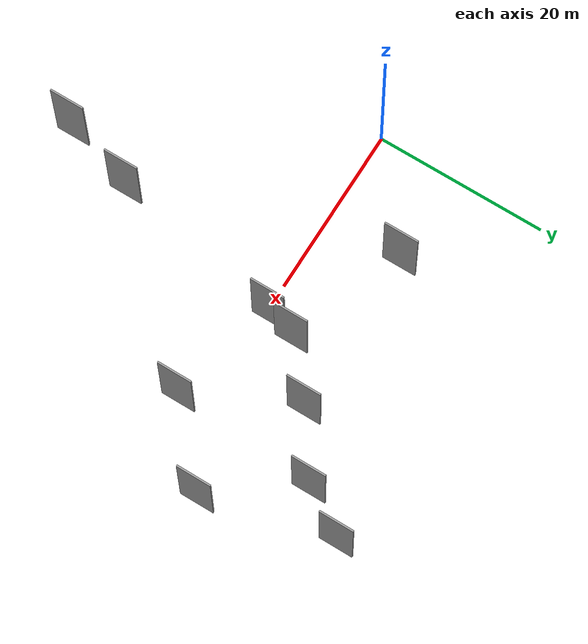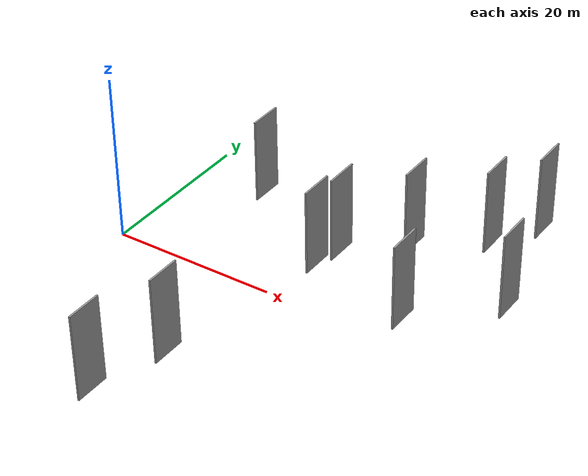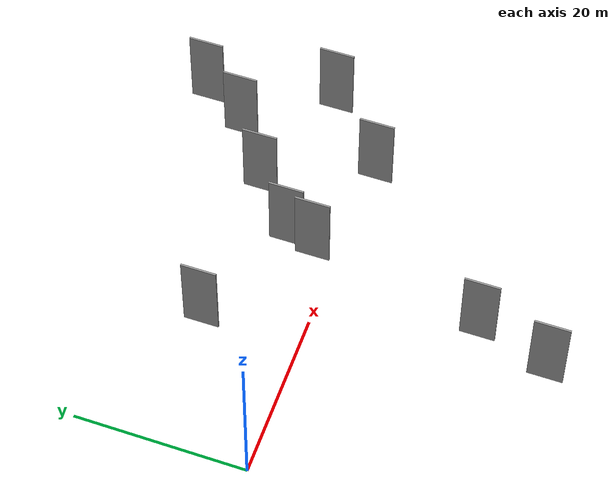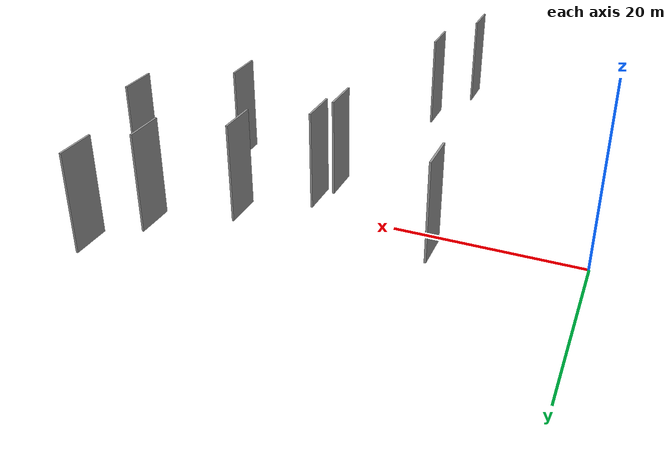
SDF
<sdf version="1.6">
 <world name="default">
  <scene>
   <sky><clouds><speed>12</speed></clouds></sky>
   <ambient>0.4 0.4 0.4 1</ambient>
   <background>0.7 0.7 0.7 1</background>
   <shadows>1</shadows>
  </scene>
  <gravity>0 0 -9.8066</gravity>
  <magnetic_field>6e-06 2.3e-05 -4.2e-05</magnetic_field>
  <physics default="0" name="default_physics" type="ode">
   <ode>
    <solver>
     <type>quick</type>
     <iters>10</iters>
     <sor>1.0</sor>
     <use_dynamic_moi_rescaling>0</use_dynamic_moi_rescaling>
    </solver>
    <constraints>
     <cfm>0</cfm>
     <erp>0.2</erp>
     <contact_max_correcting_vel>100</contact_max_correcting_vel>
     <contact_surface_layer>0.001</contact_surface_layer>
    </constraints>
   </ode>
   <max_step_size>0.004</max_step_size>
   <real_time_factor>1</real_time_factor>
   <real_time_update_rate>250</real_time_update_rate>
  </physics>
  <light name="sun" type="directional">
   <pose>0 0 10 0 0 0</pose>
   <diffuse>0.8 0.8 0.8 1</diffuse>
   <specular>0.2 0.2 0.2 1</specular>
   <attenuation>
    <range>1000</range>
    <constant>0.9</constant>
    <linear>0.01</linear>
    <quadratic>0.001</quadratic>
   </attenuation>
   <direction>-0.5 0.1 -0.9</direction>
  </light>
  <model name="grey_wall_1">
   <static>1</static>
   <pose>39.1036 15.0275 5.0 0.000000 0.000000 1.570796</pose>
   <link name="link">
    <pose>0 0 5.00 0 0 0</pose>
    <collision name="collision"><geometry><box><size>4.00 0.2 10.00</size></box></geometry></collision>
    <visual name="visual">
     <cast_shadows>0</cast_shadows>
     <geometry><box><size>4.00 0.2 10.00</size></box></geometry>
     <material>
      <script>
       <uri>model://grey_wall/materials/scripts</uri>
       <uri>model://grey_wall/materials/textures</uri>
       <name>vrc/grey_wall</name>
      </script>
     </material>
    </visual>
   </link>
  </model>
  <model name="grey_wall_2">
   <static>1</static>
   <pose>45.9836 5.8859 5.0 0.000000 0.000000 1.570796</pose>
   <link name="link">
    <pose>0 0 5.00 0 0 0</pose>
    <collision name="collision"><geometry><box><size>4.00 0.2 10.00</size></box></geometry></collision>
    <visual name="visual">
     <cast_shadows>0</cast_shadows>
     <geometry><box><size>4.00 0.2 10.00</size></box></geometry>
     <material>
      <script>
       <uri>model://grey_wall/materials/scripts</uri>
       <uri>model://grey_wall/materials/textures</uri>
       <name>vrc/grey_wall</name>
      </script>
     </material>
    </visual>
   </link>
  </model>
  <model name="grey_wall_3">
   <static>1</static>
   <pose>18.7912 -27.0530 5.0 0.000000 0.000000 1.570796</pose>
   <link name="link">
    <pose>0 0 5.00 0 0 0</pose>
    <collision name="collision"><geometry><box><size>4.00 0.2 10.00</size></box></geometry></collision>
    <visual name="visual">
     <cast_shadows>0</cast_shadows>
     <geometry><box><size>4.00 0.2 10.00</size></box></geometry>
     <material>
      <script>
       <uri>model://grey_wall/materials/scripts</uri>
       <uri>model://grey_wall/materials/textures</uri>
       <name>vrc/grey_wall</name>
      </script>
     </material>
    </visual>
   </link>
  </model>
  <model name="grey_wall_4">
   <static>1</static>
   <pose>13.1242 10.0392 5.0 0.000000 0.000000 1.570796</pose>
   <link name="link">
    <pose>0 0 5.00 0 0 0</pose>
    <collision name="collision"><geometry><box><size>4.00 0.2 10.00</size></box></geometry></collision>
    <visual name="visual">
     <cast_shadows>0</cast_shadows>
     <geometry><box><size>4.00 0.2 10.00</size></box></geometry>
     <material>
      <script>
       <uri>model://grey_wall/materials/scripts</uri>
       <uri>model://grey_wall/materials/textures</uri>
       <name>vrc/grey_wall</name>
      </script>
     </material>
    </visual>
   </link>
  </model>
  <model name="grey_wall_5">
   <static>1</static>
   <pose>21.4474 -18.6882 5.0 0.000000 0.000000 1.570796</pose>
   <link name="link">
    <pose>0 0 5.00 0 0 0</pose>
    <collision name="collision"><geometry><box><size>4.00 0.2 10.00</size></box></geometry></collision>
    <visual name="visual">
     <cast_shadows>0</cast_shadows>
     <geometry><box><size>4.00 0.2 10.00</size></box></geometry>
     <material>
      <script>
       <uri>model://grey_wall/materials/scripts</uri>
       <uri>model://grey_wall/materials/textures</uri>
       <name>vrc/grey_wall</name>
      </script>
     </material>
    </visual>
   </link>
  </model>
  <model name="grey_wall_6">
   <static>1</static>
   <pose>26.3379 4.9622 5.0 0.000000 0.000000 1.570796</pose>
   <link name="link">
    <pose>0 0 5.00 0 0 0</pose>
    <collision name="collision"><geometry><box><size>4.00 0.2 10.00</size></box></geometry></collision>
    <visual name="visual">
     <cast_shadows>0</cast_shadows>
     <geometry><box><size>4.00 0.2 10.00</size></box></geometry>
     <material>
      <script>
       <uri>model://grey_wall/materials/scripts</uri>
       <uri>model://grey_wall/materials/textures</uri>
       <name>vrc/grey_wall</name>
      </script>
     </material>
    </visual>
   </link>
  </model>
  <model name="grey_wall_7">
   <static>1</static>
   <pose>37.8991 -1.5562 5.0 0.000000 0.000000 1.570796</pose>
   <link name="link">
    <pose>0 0 5.00 0 0 0</pose>
    <collision name="collision"><geometry><box><size>4.00 0.2 10.00</size></box></geometry></collision>
    <visual name="visual">
     <cast_shadows>0</cast_shadows>
     <geometry><box><size>4.00 0.2 10.00</size></box></geometry>
     <material>
      <script>
       <uri>model://grey_wall/materials/scripts</uri>
       <uri>model://grey_wall/materials/textures</uri>
       <name>vrc/grey_wall</name>
      </script>
     </material>
    </visual>
   </link>
  </model>
  <model name="grey_wall_8">
   <static>1</static>
   <pose>42.4942 20.3552 5.0 0.000000 0.000000 1.570796</pose>
   <link name="link">
    <pose>0 0 5.00 0 0 0</pose>
    <collision name="collision"><geometry><box><size>4.00 0.2 10.00</size></box></geometry></collision>
    <visual name="visual">
     <cast_shadows>0</cast_shadows>
     <geometry><box><size>4.00 0.2 10.00</size></box></geometry>
     <material>
      <script>
       <uri>model://grey_wall/materials/scripts</uri>
       <uri>model://grey_wall/materials/textures</uri>
       <name>vrc/grey_wall</name>
      </script>
     </material>
    </visual>
   </link>
  </model>
  <model name="grey_wall_9">
   <static>1</static>
   <pose>25.4390 1.6205 5.0 0.000000 0.000000 1.570796</pose>
   <link name="link">
    <pose>0 0 5.00 0 0 0</pose>
    <collision name="collision"><geometry><box><size>4.00 0.2 10.00</size></box></geometry></collision>
    <visual name="visual">
     <cast_shadows>0</cast_shadows>
     <geometry><box><size>4.00 0.2 10.00</size></box></geometry>
     <material>
      <script>
       <uri>model://grey_wall/materials/scripts</uri>
       <uri>model://grey_wall/materials/textures</uri>
       <name>vrc/grey_wall</name>
      </script>
     </material>
    </visual>
   </link>
  </model>
  <model name="grey_wall_10">
   <static>1</static>
   <pose>32.2222 10.1743 5.0 0.000000 0.000000 1.570796</pose>
   <link name="link">
    <pose>0 0 5.00 0 0 0</pose>
    <collision name="collision"><geometry><box><size>4.00 0.2 10.00</size></box></geometry></collision>
    <visual name="visual">
     <cast_shadows>0</cast_shadows>
     <geometry><box><size>4.00 0.2 10.00</size></box></geometry>
     <material>
      <script>
       <uri>model://grey_wall/materials/scripts</uri>
       <uri>model://grey_wall/materials/textures</uri>
       <name>vrc/grey_wall</name>
      </script>
     </material>
    </visual>
   </link>
  </model>
 </world>
</sdf>
